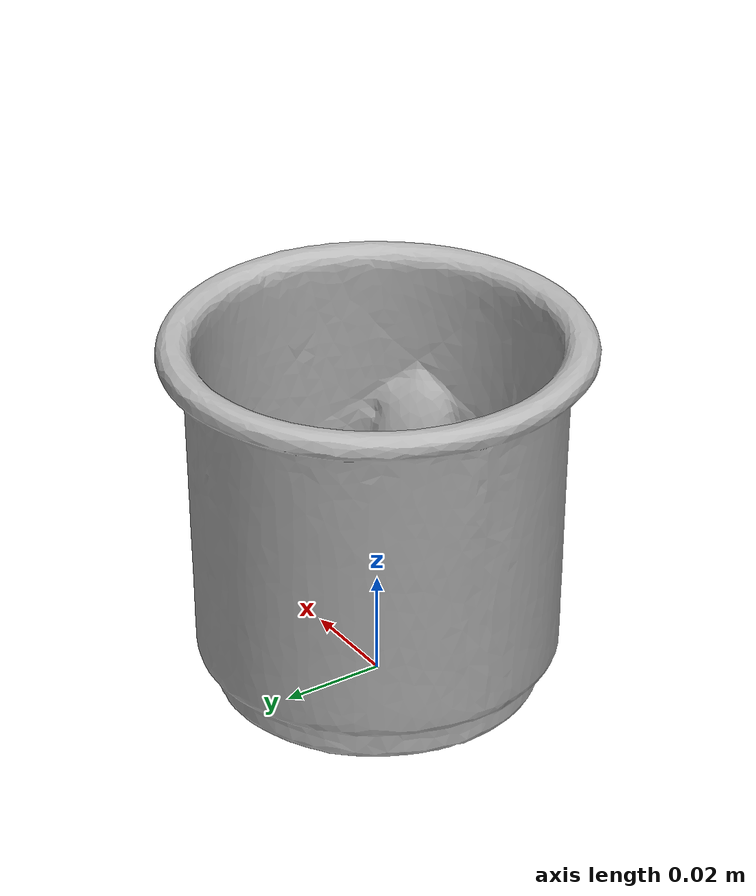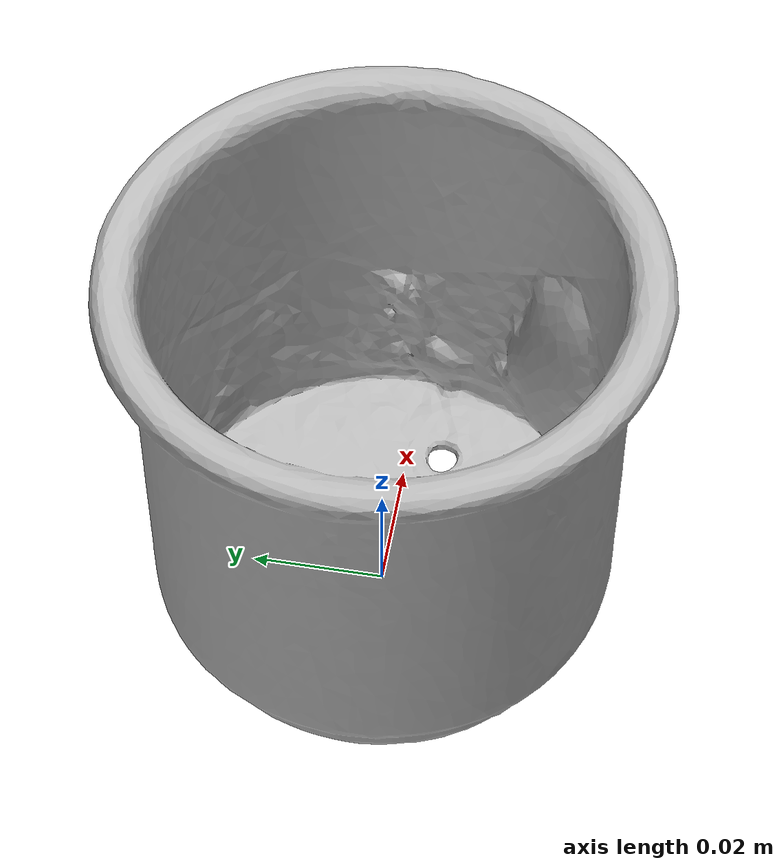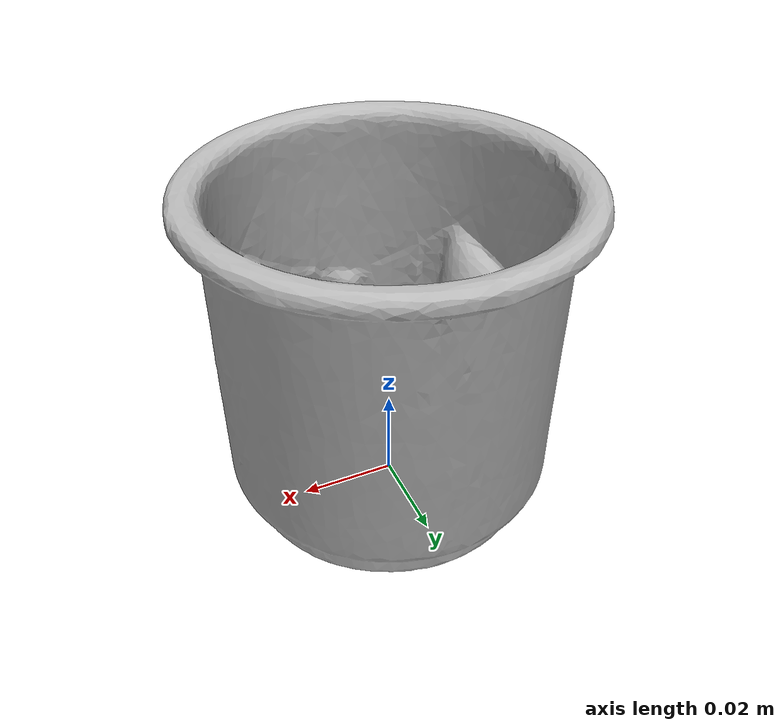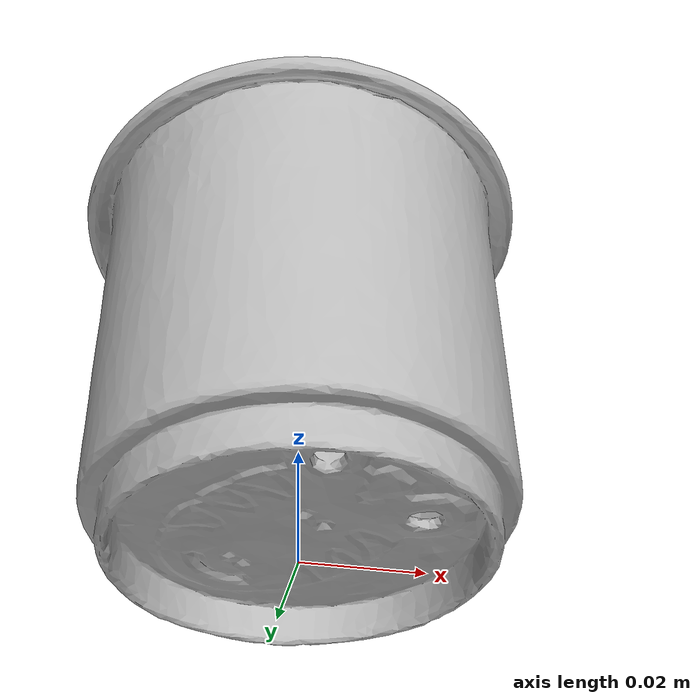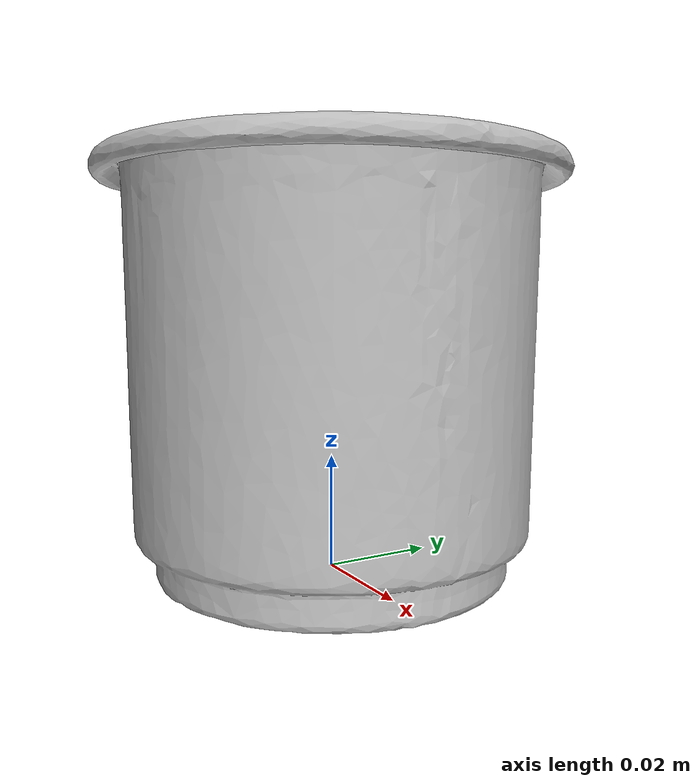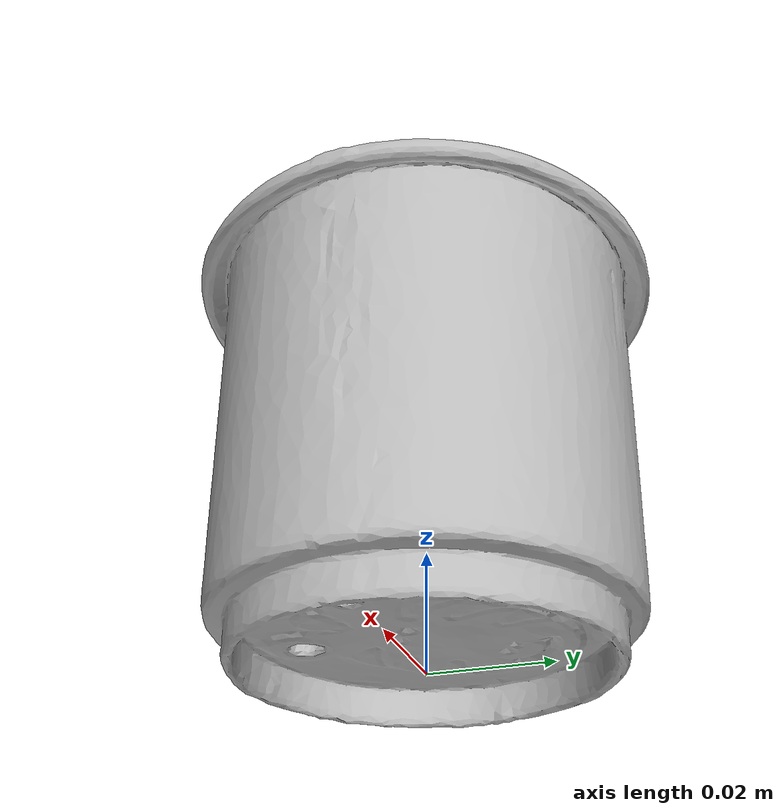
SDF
<?xml version="1.0" ?>
<sdf version='1.8'>
  <model name='ycb_065-f_cups'>
    <link name='body'>
      <inertial>
        <mass>0.021</mass>
        <pose>-0.00435378211 -0.00154654357 0.0317924489 0 0 0</pose>
        <inertia>
          <ixx>1.88566816947e-05</ixx>
          <ixy>4.86396665633e-07</ixy>
          <ixz>-8.42040081553e-07</ixz>
          <iyy>2.06357379926e-05</iyy>
          <iyz>-3.53805080698e-07</iyz>
          <izz>2.10056124637e-05</izz>
        </inertia>
      </inertial>
      <visual name='ycb_065-f_cups_visual'>
        <pose>0.033169 -0.026278 0.000359 0 0 0</pose>
        <geometry>
          <mesh>
            <uri>model://ycb_065-f_cups/meshes/textured.dae</uri>
          </mesh>
        </geometry>
      </visual>
      <collision name='ycb_065-f_cups_collision'>
        <pose>0.033169 -0.026278 0.000359 0 0 0</pose>
        <geometry>
          <mesh>
            <uri>model://ycb_065-f_cups/meshes/nontextured.stl</uri>
          </mesh>
        </geometry>
        <max_contacts>10</max_contacts>
        <surface>
          <contact>
            <ode>
              <kp>1e15</kp>
              <kd>1e13</kd>
            </ode>
          </contact>
        </surface>
      </collision>
    </link>
  </model>
</sdf>
